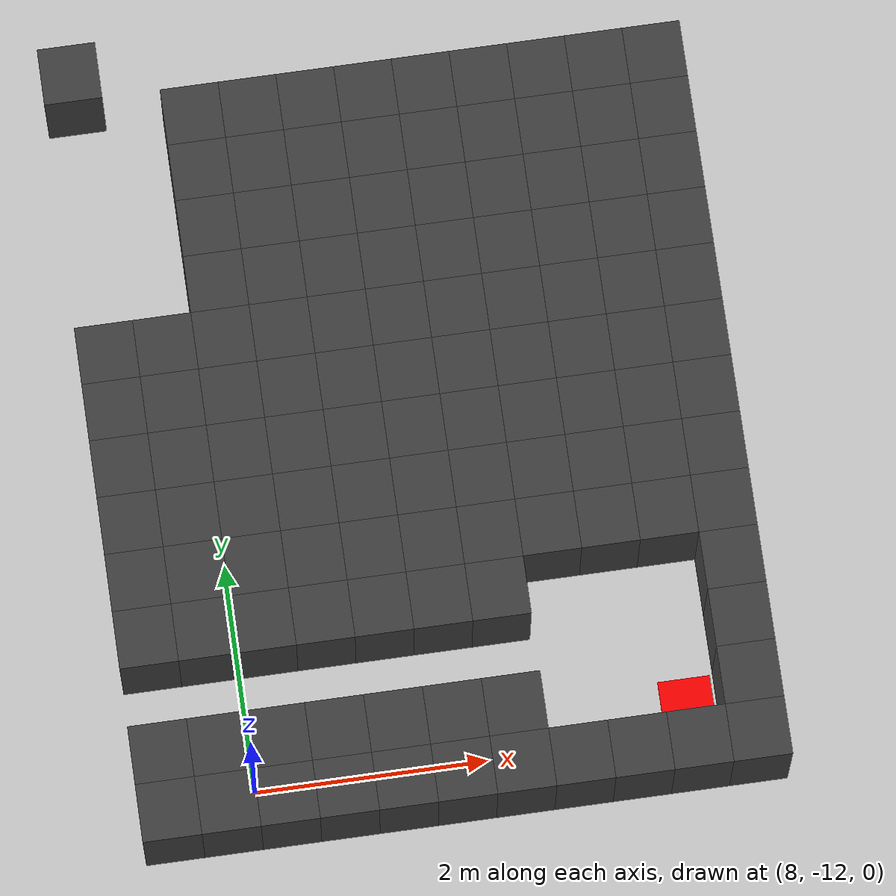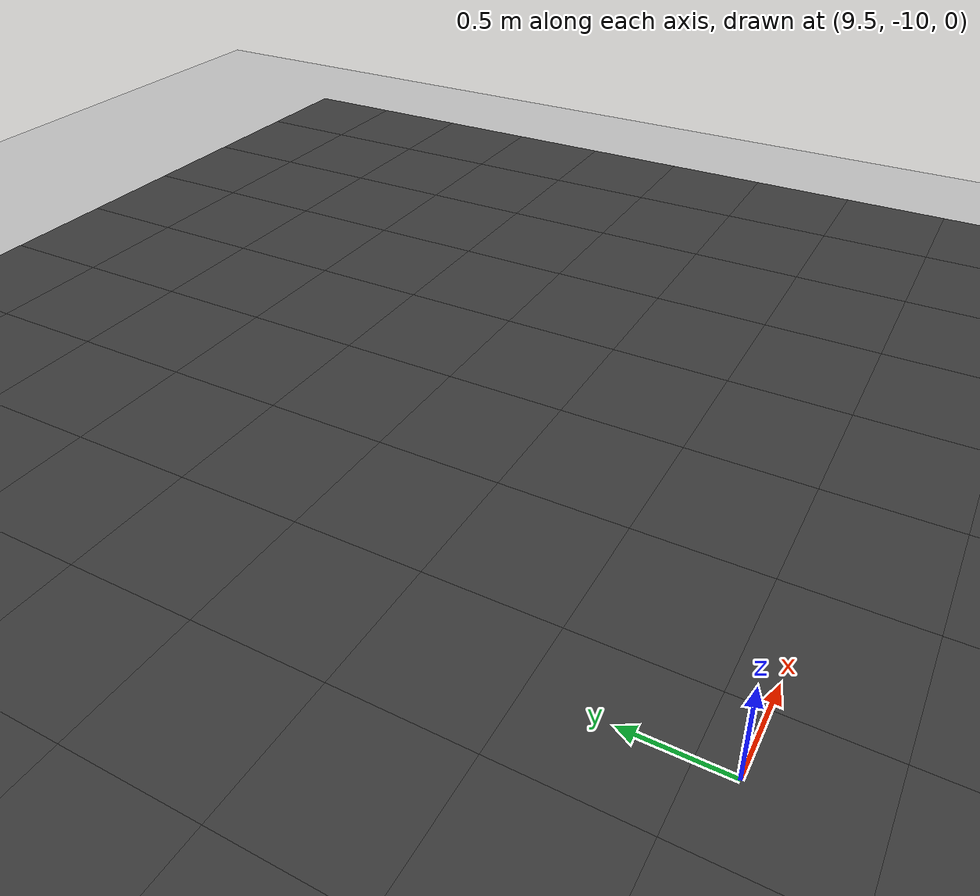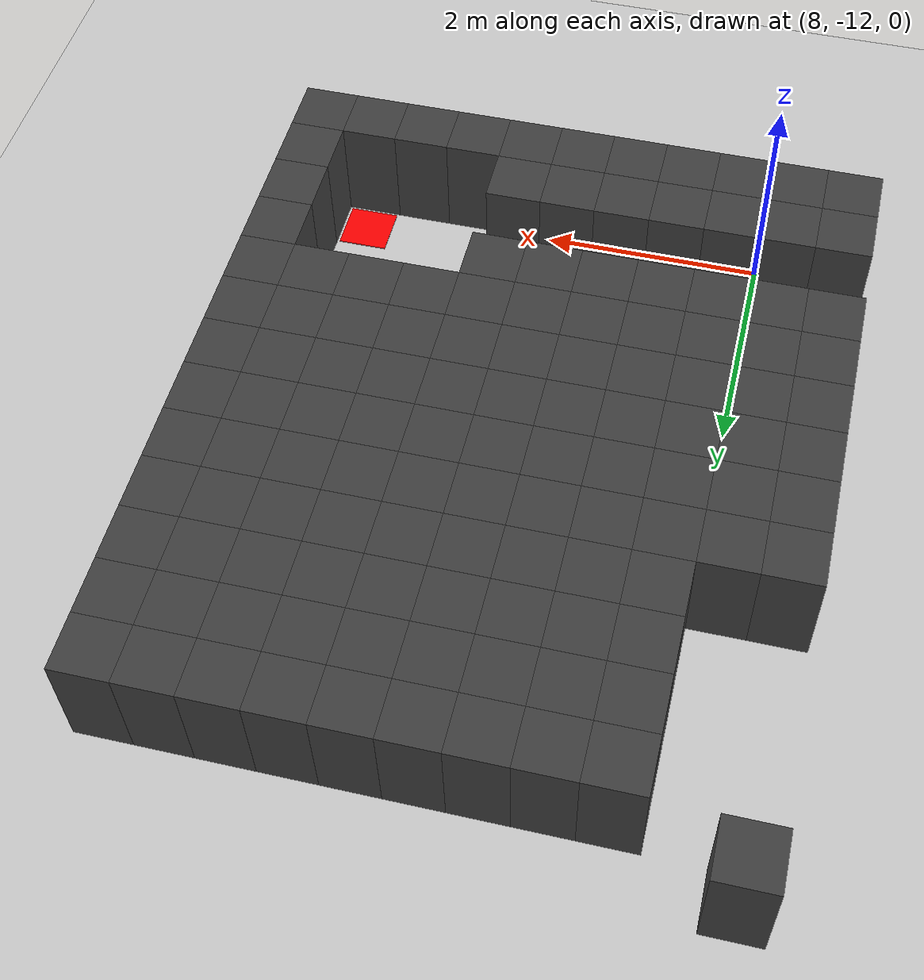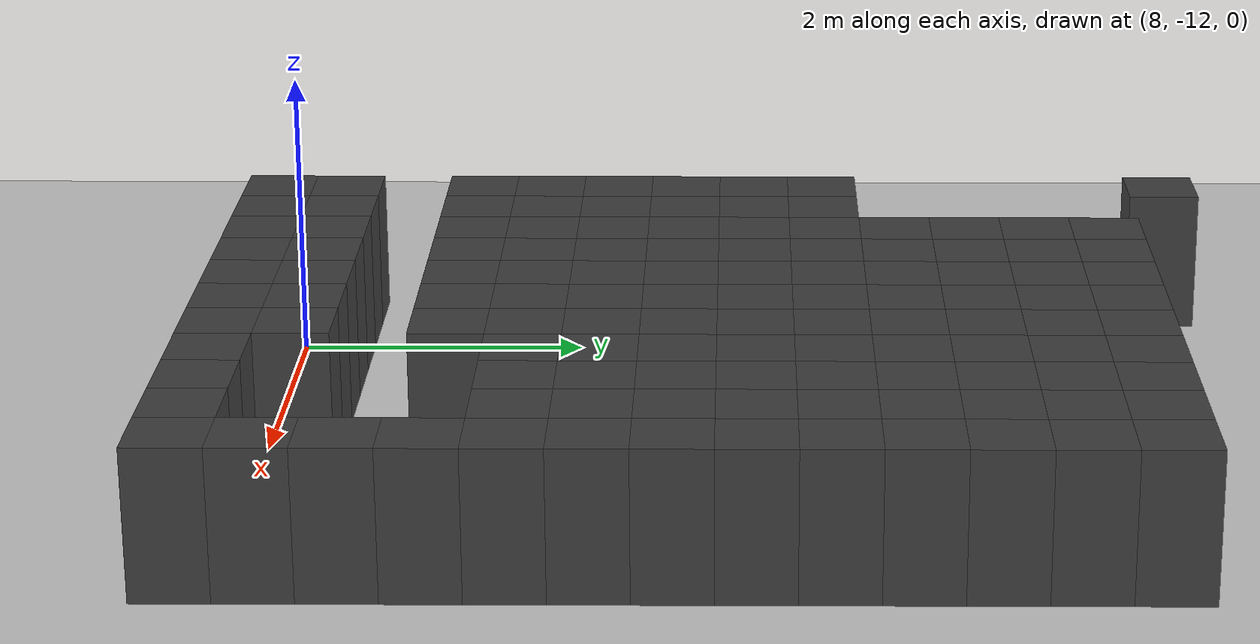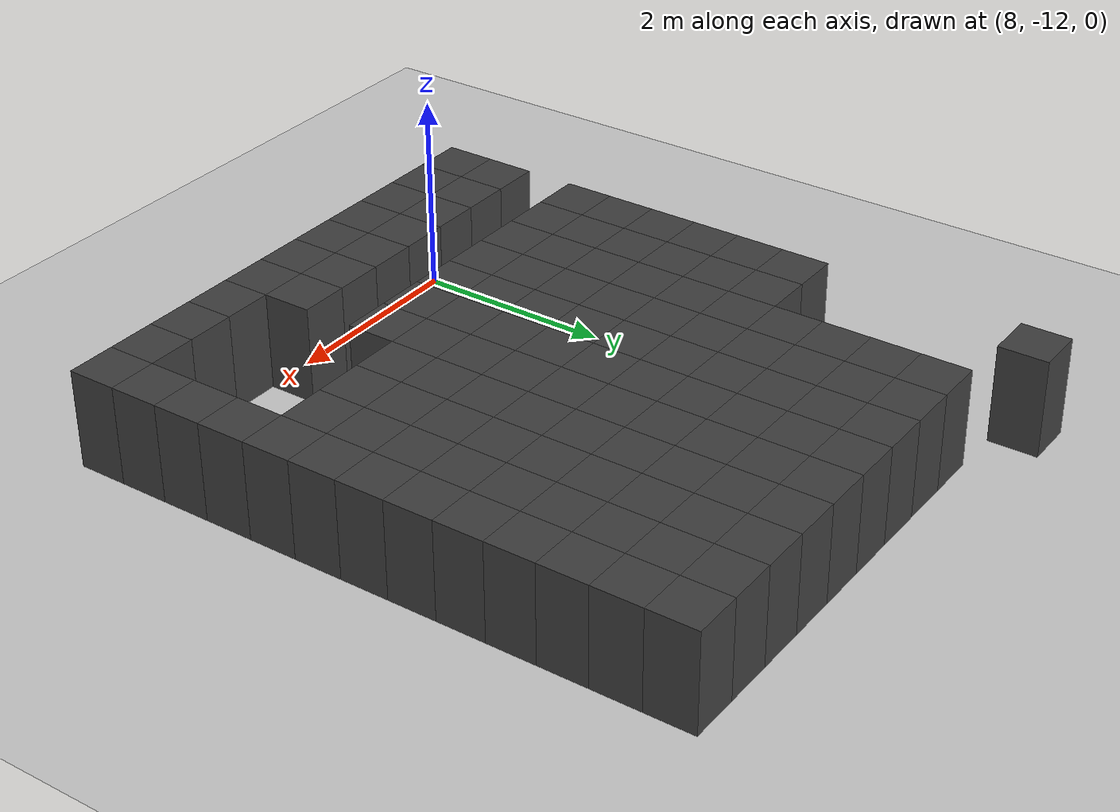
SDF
<sdf version="1.7">
 <world name="map_14510">
  <model name="ground_plane">
   <static>true</static>
   <link name="link">
    <collision name="collision">
     <geometry><plane><normal>0 0 1</normal><size>200 200</size></plane></geometry>
    </collision>
    <visual name="visual">
     <geometry><plane><normal>0 0 1</normal><size>200 200</size></plane></geometry>
     <material><ambient>0.8 0.8 0.8 1</ambient><diffuse>0.8 0.8 0.8 1</diffuse></material>
    </visual>
   </link>
  </model>
  <model name="maze_environment">
   <static>true</static>
   <link name="wall_1293">
    <pose>7.250 -5.750 0.500 0 0 0</pose>
    <collision name="col"><geometry><box><size>0.5 0.5 1.0</size></box></geometry></collision>
    <visual name="vis">
     <geometry><box><size>0.5 0.5 1.0</size></box></geometry>
     <material><ambient>0.15 0.15 0.15 1</ambient><diffuse>0.25 0.25 0.25 1</diffuse></material>
    </visual>
   </link>
   <link name="wall_1330">
    <pose>8.250 -6.250 0.500 0 0 0</pose>
    <collision name="col"><geometry><box><size>0.5 0.5 1.0</size></box></geometry></collision>
    <visual name="vis">
     <geometry><box><size>0.5 0.5 1.0</size></box></geometry>
     <material><ambient>0.15 0.15 0.15 1</ambient><diffuse>0.25 0.25 0.25 1</diffuse></material>
    </visual>
   </link>
   <link name="wall_1331">
    <pose>8.750 -6.250 0.500 0 0 0</pose>
    <collision name="col"><geometry><box><size>0.5 0.5 1.0</size></box></geometry></collision>
    <visual name="vis">
     <geometry><box><size>0.5 0.5 1.0</size></box></geometry>
     <material><ambient>0.15 0.15 0.15 1</ambient><diffuse>0.25 0.25 0.25 1</diffuse></material>
    </visual>
   </link>
   <link name="wall_1332">
    <pose>9.250 -6.250 0.500 0 0 0</pose>
    <collision name="col"><geometry><box><size>0.5 0.5 1.0</size></box></geometry></collision>
    <visual name="vis">
     <geometry><box><size>0.5 0.5 1.0</size></box></geometry>
     <material><ambient>0.15 0.15 0.15 1</ambient><diffuse>0.25 0.25 0.25 1</diffuse></material>
    </visual>
   </link>
   <link name="wall_1333">
    <pose>9.750 -6.250 0.500 0 0 0</pose>
    <collision name="col"><geometry><box><size>0.5 0.5 1.0</size></box></geometry></collision>
    <visual name="vis">
     <geometry><box><size>0.5 0.5 1.0</size></box></geometry>
     <material><ambient>0.15 0.15 0.15 1</ambient><diffuse>0.25 0.25 0.25 1</diffuse></material>
    </visual>
   </link>
   <link name="wall_1334">
    <pose>10.250 -6.250 0.500 0 0 0</pose>
    <collision name="col"><geometry><box><size>0.5 0.5 1.0</size></box></geometry></collision>
    <visual name="vis">
     <geometry><box><size>0.5 0.5 1.0</size></box></geometry>
     <material><ambient>0.15 0.15 0.15 1</ambient><diffuse>0.25 0.25 0.25 1</diffuse></material>
    </visual>
   </link>
   <link name="wall_1335">
    <pose>10.750 -6.250 0.500 0 0 0</pose>
    <collision name="col"><geometry><box><size>0.5 0.5 1.0</size></box></geometry></collision>
    <visual name="vis">
     <geometry><box><size>0.5 0.5 1.0</size></box></geometry>
     <material><ambient>0.15 0.15 0.15 1</ambient><diffuse>0.25 0.25 0.25 1</diffuse></material>
    </visual>
   </link>
   <link name="wall_1336">
    <pose>11.250 -6.250 0.500 0 0 0</pose>
    <collision name="col"><geometry><box><size>0.5 0.5 1.0</size></box></geometry></collision>
    <visual name="vis">
     <geometry><box><size>0.5 0.5 1.0</size></box></geometry>
     <material><ambient>0.15 0.15 0.15 1</ambient><diffuse>0.25 0.25 0.25 1</diffuse></material>
    </visual>
   </link>
   <link name="wall_1337">
    <pose>11.750 -6.250 0.500 0 0 0</pose>
    <collision name="col"><geometry><box><size>0.5 0.5 1.0</size></box></geometry></collision>
    <visual name="vis">
     <geometry><box><size>0.5 0.5 1.0</size></box></geometry>
     <material><ambient>0.15 0.15 0.15 1</ambient><diffuse>0.25 0.25 0.25 1</diffuse></material>
    </visual>
   </link>
   <link name="wall_1338">
    <pose>12.250 -6.250 0.500 0 0 0</pose>
    <collision name="col"><geometry><box><size>0.5 0.5 1.0</size></box></geometry></collision>
    <visual name="vis">
     <geometry><box><size>0.5 0.5 1.0</size></box></geometry>
     <material><ambient>0.15 0.15 0.15 1</ambient><diffuse>0.25 0.25 0.25 1</diffuse></material>
    </visual>
   </link>
   <link name="wall_1365">
    <pose>8.250 -6.750 0.500 0 0 0</pose>
    <collision name="col"><geometry><box><size>0.5 0.5 1.0</size></box></geometry></collision>
    <visual name="vis">
     <geometry><box><size>0.5 0.5 1.0</size></box></geometry>
     <material><ambient>0.15 0.15 0.15 1</ambient><diffuse>0.25 0.25 0.25 1</diffuse></material>
    </visual>
   </link>
   <link name="wall_1366">
    <pose>8.750 -6.750 0.500 0 0 0</pose>
    <collision name="col"><geometry><box><size>0.5 0.5 1.0</size></box></geometry></collision>
    <visual name="vis">
     <geometry><box><size>0.5 0.5 1.0</size></box></geometry>
     <material><ambient>0.15 0.15 0.15 1</ambient><diffuse>0.25 0.25 0.25 1</diffuse></material>
    </visual>
   </link>
   <link name="wall_1367">
    <pose>9.250 -6.750 0.500 0 0 0</pose>
    <collision name="col"><geometry><box><size>0.5 0.5 1.0</size></box></geometry></collision>
    <visual name="vis">
     <geometry><box><size>0.5 0.5 1.0</size></box></geometry>
     <material><ambient>0.15 0.15 0.15 1</ambient><diffuse>0.25 0.25 0.25 1</diffuse></material>
    </visual>
   </link>
   <link name="wall_1368">
    <pose>9.750 -6.750 0.500 0 0 0</pose>
    <collision name="col"><geometry><box><size>0.5 0.5 1.0</size></box></geometry></collision>
    <visual name="vis">
     <geometry><box><size>0.5 0.5 1.0</size></box></geometry>
     <material><ambient>0.15 0.15 0.15 1</ambient><diffuse>0.25 0.25 0.25 1</diffuse></material>
    </visual>
   </link>
   <link name="wall_1369">
    <pose>10.250 -6.750 0.500 0 0 0</pose>
    <collision name="col"><geometry><box><size>0.5 0.5 1.0</size></box></geometry></collision>
    <visual name="vis">
     <geometry><box><size>0.5 0.5 1.0</size></box></geometry>
     <material><ambient>0.15 0.15 0.15 1</ambient><diffuse>0.25 0.25 0.25 1</diffuse></material>
    </visual>
   </link>
   <link name="wall_1370">
    <pose>10.750 -6.750 0.500 0 0 0</pose>
    <collision name="col"><geometry><box><size>0.5 0.5 1.0</size></box></geometry></collision>
    <visual name="vis">
     <geometry><box><size>0.5 0.5 1.0</size></box></geometry>
     <material><ambient>0.15 0.15 0.15 1</ambient><diffuse>0.25 0.25 0.25 1</diffuse></material>
    </visual>
   </link>
   <link name="wall_1371">
    <pose>11.250 -6.750 0.500 0 0 0</pose>
    <collision name="col"><geometry><box><size>0.5 0.5 1.0</size></box></geometry></collision>
    <visual name="vis">
     <geometry><box><size>0.5 0.5 1.0</size></box></geometry>
     <material><ambient>0.15 0.15 0.15 1</ambient><diffuse>0.25 0.25 0.25 1</diffuse></material>
    </visual>
   </link>
   <link name="wall_1372">
    <pose>11.750 -6.750 0.500 0 0 0</pose>
    <collision name="col"><geometry><box><size>0.5 0.5 1.0</size></box></geometry></collision>
    <visual name="vis">
     <geometry><box><size>0.5 0.5 1.0</size></box></geometry>
     <material><ambient>0.15 0.15 0.15 1</ambient><diffuse>0.25 0.25 0.25 1</diffuse></material>
    </visual>
   </link>
   <link name="wall_1373">
    <pose>12.250 -6.750 0.500 0 0 0</pose>
    <collision name="col"><geometry><box><size>0.5 0.5 1.0</size></box></geometry></collision>
    <visual name="vis">
     <geometry><box><size>0.5 0.5 1.0</size></box></geometry>
     <material><ambient>0.15 0.15 0.15 1</ambient><diffuse>0.25 0.25 0.25 1</diffuse></material>
    </visual>
   </link>
   <link name="wall_1395">
    <pose>8.250 -7.250 0.500 0 0 0</pose>
    <collision name="col"><geometry><box><size>0.5 0.5 1.0</size></box></geometry></collision>
    <visual name="vis">
     <geometry><box><size>0.5 0.5 1.0</size></box></geometry>
     <material><ambient>0.15 0.15 0.15 1</ambient><diffuse>0.25 0.25 0.25 1</diffuse></material>
    </visual>
   </link>
   <link name="wall_1396">
    <pose>8.750 -7.250 0.500 0 0 0</pose>
    <collision name="col"><geometry><box><size>0.5 0.5 1.0</size></box></geometry></collision>
    <visual name="vis">
     <geometry><box><size>0.5 0.5 1.0</size></box></geometry>
     <material><ambient>0.15 0.15 0.15 1</ambient><diffuse>0.25 0.25 0.25 1</diffuse></material>
    </visual>
   </link>
   <link name="wall_1397">
    <pose>9.250 -7.250 0.500 0 0 0</pose>
    <collision name="col"><geometry><box><size>0.5 0.5 1.0</size></box></geometry></collision>
    <visual name="vis">
     <geometry><box><size>0.5 0.5 1.0</size></box></geometry>
     <material><ambient>0.15 0.15 0.15 1</ambient><diffuse>0.25 0.25 0.25 1</diffuse></material>
    </visual>
   </link>
   <link name="wall_1398">
    <pose>9.750 -7.250 0.500 0 0 0</pose>
    <collision name="col"><geometry><box><size>0.5 0.5 1.0</size></box></geometry></collision>
    <visual name="vis">
     <geometry><box><size>0.5 0.5 1.0</size></box></geometry>
     <material><ambient>0.15 0.15 0.15 1</ambient><diffuse>0.25 0.25 0.25 1</diffuse></material>
    </visual>
   </link>
   <link name="wall_1399">
    <pose>10.250 -7.250 0.500 0 0 0</pose>
    <collision name="col"><geometry><box><size>0.5 0.5 1.0</size></box></geometry></collision>
    <visual name="vis">
     <geometry><box><size>0.5 0.5 1.0</size></box></geometry>
     <material><ambient>0.15 0.15 0.15 1</ambient><diffuse>0.25 0.25 0.25 1</diffuse></material>
    </visual>
   </link>
   <link name="wall_1400">
    <pose>10.750 -7.250 0.500 0 0 0</pose>
    <collision name="col"><geometry><box><size>0.5 0.5 1.0</size></box></geometry></collision>
    <visual name="vis">
     <geometry><box><size>0.5 0.5 1.0</size></box></geometry>
     <material><ambient>0.15 0.15 0.15 1</ambient><diffuse>0.25 0.25 0.25 1</diffuse></material>
    </visual>
   </link>
   <link name="wall_1401">
    <pose>11.250 -7.250 0.500 0 0 0</pose>
    <collision name="col"><geometry><box><size>0.5 0.5 1.0</size></box></geometry></collision>
    <visual name="vis">
     <geometry><box><size>0.5 0.5 1.0</size></box></geometry>
     <material><ambient>0.15 0.15 0.15 1</ambient><diffuse>0.25 0.25 0.25 1</diffuse></material>
    </visual>
   </link>
   <link name="wall_1402">
    <pose>11.750 -7.250 0.500 0 0 0</pose>
    <collision name="col"><geometry><box><size>0.5 0.5 1.0</size></box></geometry></collision>
    <visual name="vis">
     <geometry><box><size>0.5 0.5 1.0</size></box></geometry>
     <material><ambient>0.15 0.15 0.15 1</ambient><diffuse>0.25 0.25 0.25 1</diffuse></material>
    </visual>
   </link>
   <link name="wall_1403">
    <pose>12.250 -7.250 0.500 0 0 0</pose>
    <collision name="col"><geometry><box><size>0.5 0.5 1.0</size></box></geometry></collision>
    <visual name="vis">
     <geometry><box><size>0.5 0.5 1.0</size></box></geometry>
     <material><ambient>0.15 0.15 0.15 1</ambient><diffuse>0.25 0.25 0.25 1</diffuse></material>
    </visual>
   </link>
   <link name="wall_1431">
    <pose>8.250 -7.750 0.500 0 0 0</pose>
    <collision name="col"><geometry><box><size>0.5 0.5 1.0</size></box></geometry></collision>
    <visual name="vis">
     <geometry><box><size>0.5 0.5 1.0</size></box></geometry>
     <material><ambient>0.15 0.15 0.15 1</ambient><diffuse>0.25 0.25 0.25 1</diffuse></material>
    </visual>
   </link>
   <link name="wall_1432">
    <pose>8.750 -7.750 0.500 0 0 0</pose>
    <collision name="col"><geometry><box><size>0.5 0.5 1.0</size></box></geometry></collision>
    <visual name="vis">
     <geometry><box><size>0.5 0.5 1.0</size></box></geometry>
     <material><ambient>0.15 0.15 0.15 1</ambient><diffuse>0.25 0.25 0.25 1</diffuse></material>
    </visual>
   </link>
   <link name="wall_1433">
    <pose>9.250 -7.750 0.500 0 0 0</pose>
    <collision name="col"><geometry><box><size>0.5 0.5 1.0</size></box></geometry></collision>
    <visual name="vis">
     <geometry><box><size>0.5 0.5 1.0</size></box></geometry>
     <material><ambient>0.15 0.15 0.15 1</ambient><diffuse>0.25 0.25 0.25 1</diffuse></material>
    </visual>
   </link>
   <link name="wall_1434">
    <pose>9.750 -7.750 0.500 0 0 0</pose>
    <collision name="col"><geometry><box><size>0.5 0.5 1.0</size></box></geometry></collision>
    <visual name="vis">
     <geometry><box><size>0.5 0.5 1.0</size></box></geometry>
     <material><ambient>0.15 0.15 0.15 1</ambient><diffuse>0.25 0.25 0.25 1</diffuse></material>
    </visual>
   </link>
   <link name="wall_1435">
    <pose>10.250 -7.750 0.500 0 0 0</pose>
    <collision name="col"><geometry><box><size>0.5 0.5 1.0</size></box></geometry></collision>
    <visual name="vis">
     <geometry><box><size>0.5 0.5 1.0</size></box></geometry>
     <material><ambient>0.15 0.15 0.15 1</ambient><diffuse>0.25 0.25 0.25 1</diffuse></material>
    </visual>
   </link>
   <link name="wall_1436">
    <pose>10.750 -7.750 0.500 0 0 0</pose>
    <collision name="col"><geometry><box><size>0.5 0.5 1.0</size></box></geometry></collision>
    <visual name="vis">
     <geometry><box><size>0.5 0.5 1.0</size></box></geometry>
     <material><ambient>0.15 0.15 0.15 1</ambient><diffuse>0.25 0.25 0.25 1</diffuse></material>
    </visual>
   </link>
   <link name="wall_1437">
    <pose>11.250 -7.750 0.500 0 0 0</pose>
    <collision name="col"><geometry><box><size>0.5 0.5 1.0</size></box></geometry></collision>
    <visual name="vis">
     <geometry><box><size>0.5 0.5 1.0</size></box></geometry>
     <material><ambient>0.15 0.15 0.15 1</ambient><diffuse>0.25 0.25 0.25 1</diffuse></material>
    </visual>
   </link>
   <link name="wall_1438">
    <pose>11.750 -7.750 0.500 0 0 0</pose>
    <collision name="col"><geometry><box><size>0.5 0.5 1.0</size></box></geometry></collision>
    <visual name="vis">
     <geometry><box><size>0.5 0.5 1.0</size></box></geometry>
     <material><ambient>0.15 0.15 0.15 1</ambient><diffuse>0.25 0.25 0.25 1</diffuse></material>
    </visual>
   </link>
   <link name="wall_1439">
    <pose>12.250 -7.750 0.500 0 0 0</pose>
    <collision name="col"><geometry><box><size>0.5 0.5 1.0</size></box></geometry></collision>
    <visual name="vis">
     <geometry><box><size>0.5 0.5 1.0</size></box></geometry>
     <material><ambient>0.15 0.15 0.15 1</ambient><diffuse>0.25 0.25 0.25 1</diffuse></material>
    </visual>
   </link>
   <link name="wall_1477">
    <pose>7.250 -8.250 0.500 0 0 0</pose>
    <collision name="col"><geometry><box><size>0.5 0.5 1.0</size></box></geometry></collision>
    <visual name="vis">
     <geometry><box><size>0.5 0.5 1.0</size></box></geometry>
     <material><ambient>0.15 0.15 0.15 1</ambient><diffuse>0.25 0.25 0.25 1</diffuse></material>
    </visual>
   </link>
   <link name="wall_1478">
    <pose>7.750 -8.250 0.500 0 0 0</pose>
    <collision name="col"><geometry><box><size>0.5 0.5 1.0</size></box></geometry></collision>
    <visual name="vis">
     <geometry><box><size>0.5 0.5 1.0</size></box></geometry>
     <material><ambient>0.15 0.15 0.15 1</ambient><diffuse>0.25 0.25 0.25 1</diffuse></material>
    </visual>
   </link>
   <link name="wall_1479">
    <pose>8.250 -8.250 0.500 0 0 0</pose>
    <collision name="col"><geometry><box><size>0.5 0.5 1.0</size></box></geometry></collision>
    <visual name="vis">
     <geometry><box><size>0.5 0.5 1.0</size></box></geometry>
     <material><ambient>0.15 0.15 0.15 1</ambient><diffuse>0.25 0.25 0.25 1</diffuse></material>
    </visual>
   </link>
   <link name="wall_1480">
    <pose>8.750 -8.250 0.500 0 0 0</pose>
    <collision name="col"><geometry><box><size>0.5 0.5 1.0</size></box></geometry></collision>
    <visual name="vis">
     <geometry><box><size>0.5 0.5 1.0</size></box></geometry>
     <material><ambient>0.15 0.15 0.15 1</ambient><diffuse>0.25 0.25 0.25 1</diffuse></material>
    </visual>
   </link>
   <link name="wall_1481">
    <pose>9.250 -8.250 0.500 0 0 0</pose>
    <collision name="col"><geometry><box><size>0.5 0.5 1.0</size></box></geometry></collision>
    <visual name="vis">
     <geometry><box><size>0.5 0.5 1.0</size></box></geometry>
     <material><ambient>0.15 0.15 0.15 1</ambient><diffuse>0.25 0.25 0.25 1</diffuse></material>
    </visual>
   </link>
   <link name="wall_1482">
    <pose>9.750 -8.250 0.500 0 0 0</pose>
    <collision name="col"><geometry><box><size>0.5 0.5 1.0</size></box></geometry></collision>
    <visual name="vis">
     <geometry><box><size>0.5 0.5 1.0</size></box></geometry>
     <material><ambient>0.15 0.15 0.15 1</ambient><diffuse>0.25 0.25 0.25 1</diffuse></material>
    </visual>
   </link>
   <link name="wall_1483">
    <pose>10.250 -8.250 0.500 0 0 0</pose>
    <collision name="col"><geometry><box><size>0.5 0.5 1.0</size></box></geometry></collision>
    <visual name="vis">
     <geometry><box><size>0.5 0.5 1.0</size></box></geometry>
     <material><ambient>0.15 0.15 0.15 1</ambient><diffuse>0.25 0.25 0.25 1</diffuse></material>
    </visual>
   </link>
   <link name="wall_1484">
    <pose>10.750 -8.250 0.500 0 0 0</pose>
    <collision name="col"><geometry><box><size>0.5 0.5 1.0</size></box></geometry></collision>
    <visual name="vis">
     <geometry><box><size>0.5 0.5 1.0</size></box></geometry>
     <material><ambient>0.15 0.15 0.15 1</ambient><diffuse>0.25 0.25 0.25 1</diffuse></material>
    </visual>
   </link>
   <link name="wall_1485">
    <pose>11.250 -8.250 0.500 0 0 0</pose>
    <collision name="col"><geometry><box><size>0.5 0.5 1.0</size></box></geometry></collision>
    <visual name="vis">
     <geometry><box><size>0.5 0.5 1.0</size></box></geometry>
     <material><ambient>0.15 0.15 0.15 1</ambient><diffuse>0.25 0.25 0.25 1</diffuse></material>
    </visual>
   </link>
   <link name="wall_1486">
    <pose>11.750 -8.250 0.500 0 0 0</pose>
    <collision name="col"><geometry><box><size>0.5 0.5 1.0</size></box></geometry></collision>
    <visual name="vis">
     <geometry><box><size>0.5 0.5 1.0</size></box></geometry>
     <material><ambient>0.15 0.15 0.15 1</ambient><diffuse>0.25 0.25 0.25 1</diffuse></material>
    </visual>
   </link>
   <link name="wall_1487">
    <pose>12.250 -8.250 0.500 0 0 0</pose>
    <collision name="col"><geometry><box><size>0.5 0.5 1.0</size></box></geometry></collision>
    <visual name="vis">
     <geometry><box><size>0.5 0.5 1.0</size></box></geometry>
     <material><ambient>0.15 0.15 0.15 1</ambient><diffuse>0.25 0.25 0.25 1</diffuse></material>
    </visual>
   </link>
   <link name="wall_1525">
    <pose>7.250 -8.750 0.500 0 0 0</pose>
    <collision name="col"><geometry><box><size>0.5 0.5 1.0</size></box></geometry></collision>
    <visual name="vis">
     <geometry><box><size>0.5 0.5 1.0</size></box></geometry>
     <material><ambient>0.15 0.15 0.15 1</ambient><diffuse>0.25 0.25 0.25 1</diffuse></material>
    </visual>
   </link>
   <link name="wall_1526">
    <pose>7.750 -8.750 0.500 0 0 0</pose>
    <collision name="col"><geometry><box><size>0.5 0.5 1.0</size></box></geometry></collision>
    <visual name="vis">
     <geometry><box><size>0.5 0.5 1.0</size></box></geometry>
     <material><ambient>0.15 0.15 0.15 1</ambient><diffuse>0.25 0.25 0.25 1</diffuse></material>
    </visual>
   </link>
   <link name="wall_1527">
    <pose>8.250 -8.750 0.500 0 0 0</pose>
    <collision name="col"><geometry><box><size>0.5 0.5 1.0</size></box></geometry></collision>
    <visual name="vis">
     <geometry><box><size>0.5 0.5 1.0</size></box></geometry>
     <material><ambient>0.15 0.15 0.15 1</ambient><diffuse>0.25 0.25 0.25 1</diffuse></material>
    </visual>
   </link>
   <link name="wall_1528">
    <pose>8.750 -8.750 0.500 0 0 0</pose>
    <collision name="col"><geometry><box><size>0.5 0.5 1.0</size></box></geometry></collision>
    <visual name="vis">
     <geometry><box><size>0.5 0.5 1.0</size></box></geometry>
     <material><ambient>0.15 0.15 0.15 1</ambient><diffuse>0.25 0.25 0.25 1</diffuse></material>
    </visual>
   </link>
   <link name="wall_1529">
    <pose>9.250 -8.750 0.500 0 0 0</pose>
    <collision name="col"><geometry><box><size>0.5 0.5 1.0</size></box></geometry></collision>
    <visual name="vis">
     <geometry><box><size>0.5 0.5 1.0</size></box></geometry>
     <material><ambient>0.15 0.15 0.15 1</ambient><diffuse>0.25 0.25 0.25 1</diffuse></material>
    </visual>
   </link>
   <link name="wall_1530">
    <pose>9.750 -8.750 0.500 0 0 0</pose>
    <collision name="col"><geometry><box><size>0.5 0.5 1.0</size></box></geometry></collision>
    <visual name="vis">
     <geometry><box><size>0.5 0.5 1.0</size></box></geometry>
     <material><ambient>0.15 0.15 0.15 1</ambient><diffuse>0.25 0.25 0.25 1</diffuse></material>
    </visual>
   </link>
   <link name="wall_1531">
    <pose>10.250 -8.750 0.500 0 0 0</pose>
    <collision name="col"><geometry><box><size>0.5 0.5 1.0</size></box></geometry></collision>
    <visual name="vis">
     <geometry><box><size>0.5 0.5 1.0</size></box></geometry>
     <material><ambient>0.15 0.15 0.15 1</ambient><diffuse>0.25 0.25 0.25 1</diffuse></material>
    </visual>
   </link>
   <link name="wall_1532">
    <pose>10.750 -8.750 0.500 0 0 0</pose>
    <collision name="col"><geometry><box><size>0.5 0.5 1.0</size></box></geometry></collision>
    <visual name="vis">
     <geometry><box><size>0.5 0.5 1.0</size></box></geometry>
     <material><ambient>0.15 0.15 0.15 1</ambient><diffuse>0.25 0.25 0.25 1</diffuse></material>
    </visual>
   </link>
   <link name="wall_1533">
    <pose>11.250 -8.750 0.500 0 0 0</pose>
    <collision name="col"><geometry><box><size>0.5 0.5 1.0</size></box></geometry></collision>
    <visual name="vis">
     <geometry><box><size>0.5 0.5 1.0</size></box></geometry>
     <material><ambient>0.15 0.15 0.15 1</ambient><diffuse>0.25 0.25 0.25 1</diffuse></material>
    </visual>
   </link>
   <link name="wall_1534">
    <pose>11.750 -8.750 0.500 0 0 0</pose>
    <collision name="col"><geometry><box><size>0.5 0.5 1.0</size></box></geometry></collision>
    <visual name="vis">
     <geometry><box><size>0.5 0.5 1.0</size></box></geometry>
     <material><ambient>0.15 0.15 0.15 1</ambient><diffuse>0.25 0.25 0.25 1</diffuse></material>
    </visual>
   </link>
   <link name="wall_1535">
    <pose>12.250 -8.750 0.500 0 0 0</pose>
    <collision name="col"><geometry><box><size>0.5 0.5 1.0</size></box></geometry></collision>
    <visual name="vis">
     <geometry><box><size>0.5 0.5 1.0</size></box></geometry>
     <material><ambient>0.15 0.15 0.15 1</ambient><diffuse>0.25 0.25 0.25 1</diffuse></material>
    </visual>
   </link>
   <link name="wall_1566">
    <pose>7.250 -9.250 0.500 0 0 0</pose>
    <collision name="col"><geometry><box><size>0.5 0.5 1.0</size></box></geometry></collision>
    <visual name="vis">
     <geometry><box><size>0.5 0.5 1.0</size></box></geometry>
     <material><ambient>0.15 0.15 0.15 1</ambient><diffuse>0.25 0.25 0.25 1</diffuse></material>
    </visual>
   </link>
   <link name="wall_1567">
    <pose>7.750 -9.250 0.500 0 0 0</pose>
    <collision name="col"><geometry><box><size>0.5 0.5 1.0</size></box></geometry></collision>
    <visual name="vis">
     <geometry><box><size>0.5 0.5 1.0</size></box></geometry>
     <material><ambient>0.15 0.15 0.15 1</ambient><diffuse>0.25 0.25 0.25 1</diffuse></material>
    </visual>
   </link>
   <link name="wall_1568">
    <pose>8.250 -9.250 0.500 0 0 0</pose>
    <collision name="col"><geometry><box><size>0.5 0.5 1.0</size></box></geometry></collision>
    <visual name="vis">
     <geometry><box><size>0.5 0.5 1.0</size></box></geometry>
     <material><ambient>0.15 0.15 0.15 1</ambient><diffuse>0.25 0.25 0.25 1</diffuse></material>
    </visual>
   </link>
   <link name="wall_1569">
    <pose>8.750 -9.250 0.500 0 0 0</pose>
    <collision name="col"><geometry><box><size>0.5 0.5 1.0</size></box></geometry></collision>
    <visual name="vis">
     <geometry><box><size>0.5 0.5 1.0</size></box></geometry>
     <material><ambient>0.15 0.15 0.15 1</ambient><diffuse>0.25 0.25 0.25 1</diffuse></material>
    </visual>
   </link>
   <link name="wall_1570">
    <pose>9.250 -9.250 0.500 0 0 0</pose>
    <collision name="col"><geometry><box><size>0.5 0.5 1.0</size></box></geometry></collision>
    <visual name="vis">
     <geometry><box><size>0.5 0.5 1.0</size></box></geometry>
     <material><ambient>0.15 0.15 0.15 1</ambient><diffuse>0.25 0.25 0.25 1</diffuse></material>
    </visual>
   </link>
   <link name="wall_1571">
    <pose>9.750 -9.250 0.500 0 0 0</pose>
    <collision name="col"><geometry><box><size>0.5 0.5 1.0</size></box></geometry></collision>
    <visual name="vis">
     <geometry><box><size>0.5 0.5 1.0</size></box></geometry>
     <material><ambient>0.15 0.15 0.15 1</ambient><diffuse>0.25 0.25 0.25 1</diffuse></material>
    </visual>
   </link>
   <link name="wall_1572">
    <pose>10.250 -9.250 0.500 0 0 0</pose>
    <collision name="col"><geometry><box><size>0.5 0.5 1.0</size></box></geometry></collision>
    <visual name="vis">
     <geometry><box><size>0.5 0.5 1.0</size></box></geometry>
     <material><ambient>0.15 0.15 0.15 1</ambient><diffuse>0.25 0.25 0.25 1</diffuse></material>
    </visual>
   </link>
   <link name="wall_1573">
    <pose>10.750 -9.250 0.500 0 0 0</pose>
    <collision name="col"><geometry><box><size>0.5 0.5 1.0</size></box></geometry></collision>
    <visual name="vis">
     <geometry><box><size>0.5 0.5 1.0</size></box></geometry>
     <material><ambient>0.15 0.15 0.15 1</ambient><diffuse>0.25 0.25 0.25 1</diffuse></material>
    </visual>
   </link>
   <link name="wall_1574">
    <pose>11.250 -9.250 0.500 0 0 0</pose>
    <collision name="col"><geometry><box><size>0.5 0.5 1.0</size></box></geometry></collision>
    <visual name="vis">
     <geometry><box><size>0.5 0.5 1.0</size></box></geometry>
     <material><ambient>0.15 0.15 0.15 1</ambient><diffuse>0.25 0.25 0.25 1</diffuse></material>
    </visual>
   </link>
   <link name="wall_1575">
    <pose>11.750 -9.250 0.500 0 0 0</pose>
    <collision name="col"><geometry><box><size>0.5 0.5 1.0</size></box></geometry></collision>
    <visual name="vis">
     <geometry><box><size>0.5 0.5 1.0</size></box></geometry>
     <material><ambient>0.15 0.15 0.15 1</ambient><diffuse>0.25 0.25 0.25 1</diffuse></material>
    </visual>
   </link>
   <link name="wall_1576">
    <pose>12.250 -9.250 0.500 0 0 0</pose>
    <collision name="col"><geometry><box><size>0.5 0.5 1.0</size></box></geometry></collision>
    <visual name="vis">
     <geometry><box><size>0.5 0.5 1.0</size></box></geometry>
     <material><ambient>0.15 0.15 0.15 1</ambient><diffuse>0.25 0.25 0.25 1</diffuse></material>
    </visual>
   </link>
   <link name="wall_1607">
    <pose>7.250 -9.750 0.500 0 0 0</pose>
    <collision name="col"><geometry><box><size>0.5 0.5 1.0</size></box></geometry></collision>
    <visual name="vis">
     <geometry><box><size>0.5 0.5 1.0</size></box></geometry>
     <material><ambient>0.15 0.15 0.15 1</ambient><diffuse>0.25 0.25 0.25 1</diffuse></material>
    </visual>
   </link>
   <link name="wall_1608">
    <pose>7.750 -9.750 0.500 0 0 0</pose>
    <collision name="col"><geometry><box><size>0.5 0.5 1.0</size></box></geometry></collision>
    <visual name="vis">
     <geometry><box><size>0.5 0.5 1.0</size></box></geometry>
     <material><ambient>0.15 0.15 0.15 1</ambient><diffuse>0.25 0.25 0.25 1</diffuse></material>
    </visual>
   </link>
   <link name="wall_1609">
    <pose>8.250 -9.750 0.500 0 0 0</pose>
    <collision name="col"><geometry><box><size>0.5 0.5 1.0</size></box></geometry></collision>
    <visual name="vis">
     <geometry><box><size>0.5 0.5 1.0</size></box></geometry>
     <material><ambient>0.15 0.15 0.15 1</ambient><diffuse>0.25 0.25 0.25 1</diffuse></material>
    </visual>
   </link>
   <link name="wall_1610">
    <pose>8.750 -9.750 0.500 0 0 0</pose>
    <collision name="col"><geometry><box><size>0.5 0.5 1.0</size></box></geometry></collision>
    <visual name="vis">
     <geometry><box><size>0.5 0.5 1.0</size></box></geometry>
     <material><ambient>0.15 0.15 0.15 1</ambient><diffuse>0.25 0.25 0.25 1</diffuse></material>
    </visual>
   </link>
   <link name="wall_1611">
    <pose>9.250 -9.750 0.500 0 0 0</pose>
    <collision name="col"><geometry><box><size>0.5 0.5 1.0</size></box></geometry></collision>
    <visual name="vis">
     <geometry><box><size>0.5 0.5 1.0</size></box></geometry>
     <material><ambient>0.15 0.15 0.15 1</ambient><diffuse>0.25 0.25 0.25 1</diffuse></material>
    </visual>
   </link>
   <link name="wall_1612">
    <pose>9.750 -9.750 0.500 0 0 0</pose>
    <collision name="col"><geometry><box><size>0.5 0.5 1.0</size></box></geometry></collision>
    <visual name="vis">
     <geometry><box><size>0.5 0.5 1.0</size></box></geometry>
     <material><ambient>0.15 0.15 0.15 1</ambient><diffuse>0.25 0.25 0.25 1</diffuse></material>
    </visual>
   </link>
   <link name="wall_1613">
    <pose>10.250 -9.750 0.500 0 0 0</pose>
    <collision name="col"><geometry><box><size>0.5 0.5 1.0</size></box></geometry></collision>
    <visual name="vis">
     <geometry><box><size>0.5 0.5 1.0</size></box></geometry>
     <material><ambient>0.15 0.15 0.15 1</ambient><diffuse>0.25 0.25 0.25 1</diffuse></material>
    </visual>
   </link>
   <link name="wall_1614">
    <pose>10.750 -9.750 0.500 0 0 0</pose>
    <collision name="col"><geometry><box><size>0.5 0.5 1.0</size></box></geometry></collision>
    <visual name="vis">
     <geometry><box><size>0.5 0.5 1.0</size></box></geometry>
     <material><ambient>0.15 0.15 0.15 1</ambient><diffuse>0.25 0.25 0.25 1</diffuse></material>
    </visual>
   </link>
   <link name="wall_1615">
    <pose>11.250 -9.750 0.500 0 0 0</pose>
    <collision name="col"><geometry><box><size>0.5 0.5 1.0</size></box></geometry></collision>
    <visual name="vis">
     <geometry><box><size>0.5 0.5 1.0</size></box></geometry>
     <material><ambient>0.15 0.15 0.15 1</ambient><diffuse>0.25 0.25 0.25 1</diffuse></material>
    </visual>
   </link>
   <link name="wall_1616">
    <pose>11.750 -9.750 0.500 0 0 0</pose>
    <collision name="col"><geometry><box><size>0.5 0.5 1.0</size></box></geometry></collision>
    <visual name="vis">
     <geometry><box><size>0.5 0.5 1.0</size></box></geometry>
     <material><ambient>0.15 0.15 0.15 1</ambient><diffuse>0.25 0.25 0.25 1</diffuse></material>
    </visual>
   </link>
   <link name="wall_1617">
    <pose>12.250 -9.750 0.500 0 0 0</pose>
    <collision name="col"><geometry><box><size>0.5 0.5 1.0</size></box></geometry></collision>
    <visual name="vis">
     <geometry><box><size>0.5 0.5 1.0</size></box></geometry>
     <material><ambient>0.15 0.15 0.15 1</ambient><diffuse>0.25 0.25 0.25 1</diffuse></material>
    </visual>
   </link>
   <link name="wall_1639">
    <pose>7.250 -10.250 0.500 0 0 0</pose>
    <collision name="col"><geometry><box><size>0.5 0.5 1.0</size></box></geometry></collision>
    <visual name="vis">
     <geometry><box><size>0.5 0.5 1.0</size></box></geometry>
     <material><ambient>0.15 0.15 0.15 1</ambient><diffuse>0.25 0.25 0.25 1</diffuse></material>
    </visual>
   </link>
   <link name="wall_1640">
    <pose>7.750 -10.250 0.500 0 0 0</pose>
    <collision name="col"><geometry><box><size>0.5 0.5 1.0</size></box></geometry></collision>
    <visual name="vis">
     <geometry><box><size>0.5 0.5 1.0</size></box></geometry>
     <material><ambient>0.15 0.15 0.15 1</ambient><diffuse>0.25 0.25 0.25 1</diffuse></material>
    </visual>
   </link>
   <link name="wall_1641">
    <pose>8.250 -10.250 0.500 0 0 0</pose>
    <collision name="col"><geometry><box><size>0.5 0.5 1.0</size></box></geometry></collision>
    <visual name="vis">
     <geometry><box><size>0.5 0.5 1.0</size></box></geometry>
     <material><ambient>0.15 0.15 0.15 1</ambient><diffuse>0.25 0.25 0.25 1</diffuse></material>
    </visual>
   </link>
   <link name="wall_1642">
    <pose>8.750 -10.250 0.500 0 0 0</pose>
    <collision name="col"><geometry><box><size>0.5 0.5 1.0</size></box></geometry></collision>
    <visual name="vis">
     <geometry><box><size>0.5 0.5 1.0</size></box></geometry>
     <material><ambient>0.15 0.15 0.15 1</ambient><diffuse>0.25 0.25 0.25 1</diffuse></material>
    </visual>
   </link>
   <link name="wall_1643">
    <pose>9.250 -10.250 0.500 0 0 0</pose>
    <collision name="col"><geometry><box><size>0.5 0.5 1.0</size></box></geometry></collision>
    <visual name="vis">
     <geometry><box><size>0.5 0.5 1.0</size></box></geometry>
     <material><ambient>0.15 0.15 0.15 1</ambient><diffuse>0.25 0.25 0.25 1</diffuse></material>
    </visual>
   </link>
   <link name="wall_1644">
    <pose>9.750 -10.250 0.500 0 0 0</pose>
    <collision name="col"><geometry><box><size>0.5 0.5 1.0</size></box></geometry></collision>
    <visual name="vis">
     <geometry><box><size>0.5 0.5 1.0</size></box></geometry>
     <material><ambient>0.15 0.15 0.15 1</ambient><diffuse>0.25 0.25 0.25 1</diffuse></material>
    </visual>
   </link>
   <link name="wall_1645">
    <pose>10.250 -10.250 0.500 0 0 0</pose>
    <collision name="col"><geometry><box><size>0.5 0.5 1.0</size></box></geometry></collision>
    <visual name="vis">
     <geometry><box><size>0.5 0.5 1.0</size></box></geometry>
     <material><ambient>0.15 0.15 0.15 1</ambient><diffuse>0.25 0.25 0.25 1</diffuse></material>
    </visual>
   </link>
   <link name="wall_1646">
    <pose>10.750 -10.250 0.500 0 0 0</pose>
    <collision name="col"><geometry><box><size>0.5 0.5 1.0</size></box></geometry></collision>
    <visual name="vis">
     <geometry><box><size>0.5 0.5 1.0</size></box></geometry>
     <material><ambient>0.15 0.15 0.15 1</ambient><diffuse>0.25 0.25 0.25 1</diffuse></material>
    </visual>
   </link>
   <link name="wall_1647">
    <pose>11.250 -10.250 0.500 0 0 0</pose>
    <collision name="col"><geometry><box><size>0.5 0.5 1.0</size></box></geometry></collision>
    <visual name="vis">
     <geometry><box><size>0.5 0.5 1.0</size></box></geometry>
     <material><ambient>0.15 0.15 0.15 1</ambient><diffuse>0.25 0.25 0.25 1</diffuse></material>
    </visual>
   </link>
   <link name="wall_1648">
    <pose>11.750 -10.250 0.500 0 0 0</pose>
    <collision name="col"><geometry><box><size>0.5 0.5 1.0</size></box></geometry></collision>
    <visual name="vis">
     <geometry><box><size>0.5 0.5 1.0</size></box></geometry>
     <material><ambient>0.15 0.15 0.15 1</ambient><diffuse>0.25 0.25 0.25 1</diffuse></material>
    </visual>
   </link>
   <link name="wall_1649">
    <pose>12.250 -10.250 0.500 0 0 0</pose>
    <collision name="col"><geometry><box><size>0.5 0.5 1.0</size></box></geometry></collision>
    <visual name="vis">
     <geometry><box><size>0.5 0.5 1.0</size></box></geometry>
     <material><ambient>0.15 0.15 0.15 1</ambient><diffuse>0.25 0.25 0.25 1</diffuse></material>
    </visual>
   </link>
   <link name="wall_1681">
    <pose>7.250 -10.750 0.500 0 0 0</pose>
    <collision name="col"><geometry><box><size>0.5 0.5 1.0</size></box></geometry></collision>
    <visual name="vis">
     <geometry><box><size>0.5 0.5 1.0</size></box></geometry>
     <material><ambient>0.15 0.15 0.15 1</ambient><diffuse>0.25 0.25 0.25 1</diffuse></material>
    </visual>
   </link>
   <link name="wall_1682">
    <pose>7.750 -10.750 0.500 0 0 0</pose>
    <collision name="col"><geometry><box><size>0.5 0.5 1.0</size></box></geometry></collision>
    <visual name="vis">
     <geometry><box><size>0.5 0.5 1.0</size></box></geometry>
     <material><ambient>0.15 0.15 0.15 1</ambient><diffuse>0.25 0.25 0.25 1</diffuse></material>
    </visual>
   </link>
   <link name="wall_1683">
    <pose>8.250 -10.750 0.500 0 0 0</pose>
    <collision name="col"><geometry><box><size>0.5 0.5 1.0</size></box></geometry></collision>
    <visual name="vis">
     <geometry><box><size>0.5 0.5 1.0</size></box></geometry>
     <material><ambient>0.15 0.15 0.15 1</ambient><diffuse>0.25 0.25 0.25 1</diffuse></material>
    </visual>
   </link>
   <link name="wall_1684">
    <pose>8.750 -10.750 0.500 0 0 0</pose>
    <collision name="col"><geometry><box><size>0.5 0.5 1.0</size></box></geometry></collision>
    <visual name="vis">
     <geometry><box><size>0.5 0.5 1.0</size></box></geometry>
     <material><ambient>0.15 0.15 0.15 1</ambient><diffuse>0.25 0.25 0.25 1</diffuse></material>
    </visual>
   </link>
   <link name="wall_1685">
    <pose>9.250 -10.750 0.500 0 0 0</pose>
    <collision name="col"><geometry><box><size>0.5 0.5 1.0</size></box></geometry></collision>
    <visual name="vis">
     <geometry><box><size>0.5 0.5 1.0</size></box></geometry>
     <material><ambient>0.15 0.15 0.15 1</ambient><diffuse>0.25 0.25 0.25 1</diffuse></material>
    </visual>
   </link>
   <link name="wall_1686">
    <pose>9.750 -10.750 0.500 0 0 0</pose>
    <collision name="col"><geometry><box><size>0.5 0.5 1.0</size></box></geometry></collision>
    <visual name="vis">
     <geometry><box><size>0.5 0.5 1.0</size></box></geometry>
     <material><ambient>0.15 0.15 0.15 1</ambient><diffuse>0.25 0.25 0.25 1</diffuse></material>
    </visual>
   </link>
   <link name="wall_1687">
    <pose>10.250 -10.750 0.500 0 0 0</pose>
    <collision name="col"><geometry><box><size>0.5 0.5 1.0</size></box></geometry></collision>
    <visual name="vis">
     <geometry><box><size>0.5 0.5 1.0</size></box></geometry>
     <material><ambient>0.15 0.15 0.15 1</ambient><diffuse>0.25 0.25 0.25 1</diffuse></material>
    </visual>
   </link>
   <link name="wall_1688">
    <pose>12.250 -10.750 0.500 0 0 0</pose>
    <collision name="col"><geometry><box><size>0.5 0.5 1.0</size></box></geometry></collision>
    <visual name="vis">
     <geometry><box><size>0.5 0.5 1.0</size></box></geometry>
     <material><ambient>0.15 0.15 0.15 1</ambient><diffuse>0.25 0.25 0.25 1</diffuse></material>
    </visual>
   </link>
   <link name="wall_1720">
    <pose>12.250 -11.250 0.500 0 0 0</pose>
    <collision name="col"><geometry><box><size>0.5 0.5 1.0</size></box></geometry></collision>
    <visual name="vis">
     <geometry><box><size>0.5 0.5 1.0</size></box></geometry>
     <material><ambient>0.15 0.15 0.15 1</ambient><diffuse>0.25 0.25 0.25 1</diffuse></material>
    </visual>
   </link>
   <link name="wall_1760">
    <pose>7.250 -11.750 0.500 0 0 0</pose>
    <collision name="col"><geometry><box><size>0.5 0.5 1.0</size></box></geometry></collision>
    <visual name="vis">
     <geometry><box><size>0.5 0.5 1.0</size></box></geometry>
     <material><ambient>0.15 0.15 0.15 1</ambient><diffuse>0.25 0.25 0.25 1</diffuse></material>
    </visual>
   </link>
   <link name="wall_1761">
    <pose>7.750 -11.750 0.500 0 0 0</pose>
    <collision name="col"><geometry><box><size>0.5 0.5 1.0</size></box></geometry></collision>
    <visual name="vis">
     <geometry><box><size>0.5 0.5 1.0</size></box></geometry>
     <material><ambient>0.15 0.15 0.15 1</ambient><diffuse>0.25 0.25 0.25 1</diffuse></material>
    </visual>
   </link>
   <link name="wall_1762">
    <pose>8.250 -11.750 0.500 0 0 0</pose>
    <collision name="col"><geometry><box><size>0.5 0.5 1.0</size></box></geometry></collision>
    <visual name="vis">
     <geometry><box><size>0.5 0.5 1.0</size></box></geometry>
     <material><ambient>0.15 0.15 0.15 1</ambient><diffuse>0.25 0.25 0.25 1</diffuse></material>
    </visual>
   </link>
   <link name="wall_1763">
    <pose>8.750 -11.750 0.500 0 0 0</pose>
    <collision name="col"><geometry><box><size>0.5 0.5 1.0</size></box></geometry></collision>
    <visual name="vis">
     <geometry><box><size>0.5 0.5 1.0</size></box></geometry>
     <material><ambient>0.15 0.15 0.15 1</ambient><diffuse>0.25 0.25 0.25 1</diffuse></material>
    </visual>
   </link>
   <link name="wall_1764">
    <pose>9.250 -11.750 0.500 0 0 0</pose>
    <collision name="col"><geometry><box><size>0.5 0.5 1.0</size></box></geometry></collision>
    <visual name="vis">
     <geometry><box><size>0.5 0.5 1.0</size></box></geometry>
     <material><ambient>0.15 0.15 0.15 1</ambient><diffuse>0.25 0.25 0.25 1</diffuse></material>
    </visual>
   </link>
   <link name="wall_1765">
    <pose>9.750 -11.750 0.500 0 0 0</pose>
    <collision name="col"><geometry><box><size>0.5 0.5 1.0</size></box></geometry></collision>
    <visual name="vis">
     <geometry><box><size>0.5 0.5 1.0</size></box></geometry>
     <material><ambient>0.15 0.15 0.15 1</ambient><diffuse>0.25 0.25 0.25 1</diffuse></material>
    </visual>
   </link>
   <link name="wall_1766">
    <pose>10.250 -11.750 0.500 0 0 0</pose>
    <collision name="col"><geometry><box><size>0.5 0.5 1.0</size></box></geometry></collision>
    <visual name="vis">
     <geometry><box><size>0.5 0.5 1.0</size></box></geometry>
     <material><ambient>0.15 0.15 0.15 1</ambient><diffuse>0.25 0.25 0.25 1</diffuse></material>
    </visual>
   </link>
   <link name="wall_1767">
    <pose>12.250 -11.750 0.500 0 0 0</pose>
    <collision name="col"><geometry><box><size>0.5 0.5 1.0</size></box></geometry></collision>
    <visual name="vis">
     <geometry><box><size>0.5 0.5 1.0</size></box></geometry>
     <material><ambient>0.15 0.15 0.15 1</ambient><diffuse>0.25 0.25 0.25 1</diffuse></material>
    </visual>
   </link>
   <link name="wall_1807">
    <pose>7.250 -12.250 0.500 0 0 0</pose>
    <collision name="col"><geometry><box><size>0.5 0.5 1.0</size></box></geometry></collision>
    <visual name="vis">
     <geometry><box><size>0.5 0.5 1.0</size></box></geometry>
     <material><ambient>0.15 0.15 0.15 1</ambient><diffuse>0.25 0.25 0.25 1</diffuse></material>
    </visual>
   </link>
   <link name="wall_1808">
    <pose>7.750 -12.250 0.500 0 0 0</pose>
    <collision name="col"><geometry><box><size>0.5 0.5 1.0</size></box></geometry></collision>
    <visual name="vis">
     <geometry><box><size>0.5 0.5 1.0</size></box></geometry>
     <material><ambient>0.15 0.15 0.15 1</ambient><diffuse>0.25 0.25 0.25 1</diffuse></material>
    </visual>
   </link>
   <link name="wall_1809">
    <pose>8.250 -12.250 0.500 0 0 0</pose>
    <collision name="col"><geometry><box><size>0.5 0.5 1.0</size></box></geometry></collision>
    <visual name="vis">
     <geometry><box><size>0.5 0.5 1.0</size></box></geometry>
     <material><ambient>0.15 0.15 0.15 1</ambient><diffuse>0.25 0.25 0.25 1</diffuse></material>
    </visual>
   </link>
   <link name="wall_1810">
    <pose>8.750 -12.250 0.500 0 0 0</pose>
    <collision name="col"><geometry><box><size>0.5 0.5 1.0</size></box></geometry></collision>
    <visual name="vis">
     <geometry><box><size>0.5 0.5 1.0</size></box></geometry>
     <material><ambient>0.15 0.15 0.15 1</ambient><diffuse>0.25 0.25 0.25 1</diffuse></material>
    </visual>
   </link>
   <link name="wall_1811">
    <pose>9.250 -12.250 0.500 0 0 0</pose>
    <collision name="col"><geometry><box><size>0.5 0.5 1.0</size></box></geometry></collision>
    <visual name="vis">
     <geometry><box><size>0.5 0.5 1.0</size></box></geometry>
     <material><ambient>0.15 0.15 0.15 1</ambient><diffuse>0.25 0.25 0.25 1</diffuse></material>
    </visual>
   </link>
   <link name="wall_1812">
    <pose>9.750 -12.250 0.500 0 0 0</pose>
    <collision name="col"><geometry><box><size>0.5 0.5 1.0</size></box></geometry></collision>
    <visual name="vis">
     <geometry><box><size>0.5 0.5 1.0</size></box></geometry>
     <material><ambient>0.15 0.15 0.15 1</ambient><diffuse>0.25 0.25 0.25 1</diffuse></material>
    </visual>
   </link>
   <link name="wall_1813">
    <pose>10.250 -12.250 0.500 0 0 0</pose>
    <collision name="col"><geometry><box><size>0.5 0.5 1.0</size></box></geometry></collision>
    <visual name="vis">
     <geometry><box><size>0.5 0.5 1.0</size></box></geometry>
     <material><ambient>0.15 0.15 0.15 1</ambient><diffuse>0.25 0.25 0.25 1</diffuse></material>
    </visual>
   </link>
   <link name="wall_1814">
    <pose>10.750 -12.250 0.500 0 0 0</pose>
    <collision name="col"><geometry><box><size>0.5 0.5 1.0</size></box></geometry></collision>
    <visual name="vis">
     <geometry><box><size>0.5 0.5 1.0</size></box></geometry>
     <material><ambient>0.15 0.15 0.15 1</ambient><diffuse>0.25 0.25 0.25 1</diffuse></material>
    </visual>
   </link>
   <link name="wall_1815">
    <pose>11.250 -12.250 0.500 0 0 0</pose>
    <collision name="col"><geometry><box><size>0.5 0.5 1.0</size></box></geometry></collision>
    <visual name="vis">
     <geometry><box><size>0.5 0.5 1.0</size></box></geometry>
     <material><ambient>0.15 0.15 0.15 1</ambient><diffuse>0.25 0.25 0.25 1</diffuse></material>
    </visual>
   </link>
   <link name="wall_1816">
    <pose>11.750 -12.250 0.500 0 0 0</pose>
    <collision name="col"><geometry><box><size>0.5 0.5 1.0</size></box></geometry></collision>
    <visual name="vis">
     <geometry><box><size>0.5 0.5 1.0</size></box></geometry>
     <material><ambient>0.15 0.15 0.15 1</ambient><diffuse>0.25 0.25 0.25 1</diffuse></material>
    </visual>
   </link>
   <link name="wall_1817">
    <pose>12.250 -12.250 0.500 0 0 0</pose>
    <collision name="col"><geometry><box><size>0.5 0.5 1.0</size></box></geometry></collision>
    <visual name="vis">
     <geometry><box><size>0.5 0.5 1.0</size></box></geometry>
     <material><ambient>0.15 0.15 0.15 1</ambient><diffuse>0.25 0.25 0.25 1</diffuse></material>
    </visual>
   </link>
   <link name="goal_zone">
    <pose>11.750 -11.750 0.005 0 0 0</pose>
    <visual name="vis">
     <geometry><box><size>0.45 0.45 0.01</size></box></geometry>
     <material>
      <ambient>1.0 0.0 0.0 1</ambient>
      <diffuse>1.0 0.0 0.0 1</diffuse>
      <emissive>0.60 0.00 0.00 1</emissive>
     </material>
    </visual>
   </link>
  </model>
 </world>
</sdf>
